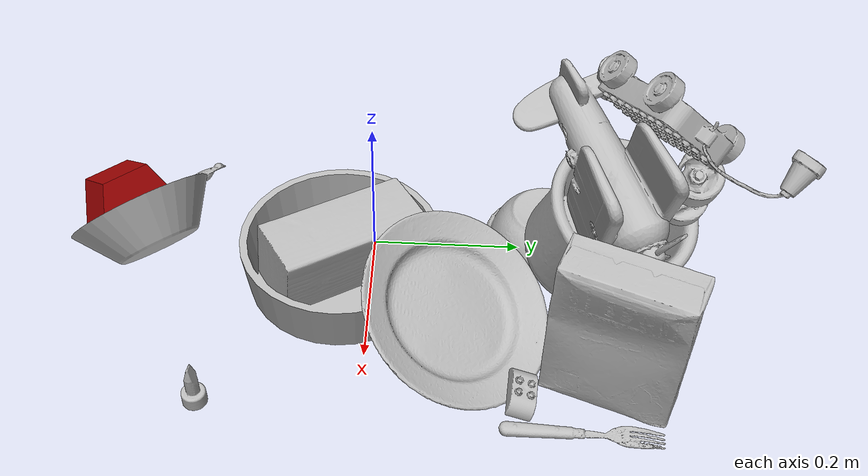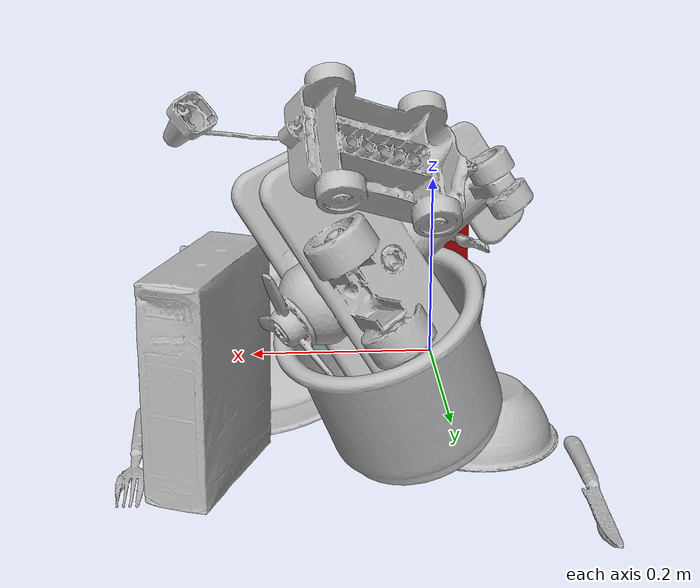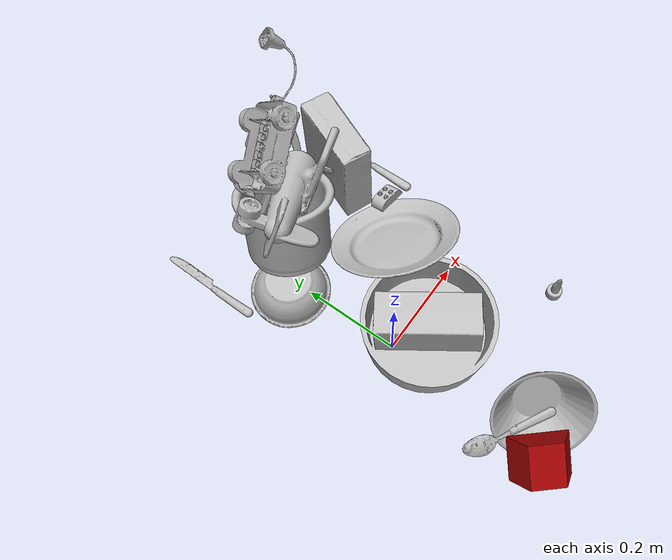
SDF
<sdf version="1.4">
  <world name="default">
    <light name="light1" type="point">
      <pose>0 0 1 0 0 0</pose>
      <diffuse>3 3 3 1</diffuse>
      <specular>3 3 3 1</specular>
    </light>
    <light name="light2" type="point">
      <pose>0 0.5 2 0 0 0</pose>
      <diffuse>1 1 1 1</diffuse>
      <specular>1 1 1 1</specular>
    </light>
    <light name="light3" type="point">
      <pose>0 0.5 2 0 0 0</pose>
      <diffuse>3 3 3 1</diffuse>
      <specular>3 3 3 1</specular>
    </light>
    <scene>
      <ambient>0.7 0.7 0.7</ambient>
    </scene>
    <model name="plate1">
      <link name="link_plate1">
        <collision name="default">
          <geometry>
            <mesh>
              <uri>model://plate/collision_meshes/collision.obj</uri>
              <scale>1.0 1.0 1.0</scale>
            </mesh>
          </geometry>
          <surface>
            <friction>
              <ode>
                <mu>0.5</mu>
                <mu2>0.5</mu2>
              </ode>
            </friction>
          <contact>
        <ode>
            <max_vel>0</max_vel>
            <min_depth>0.0001</min_depth>
            <kp>1e8</kp>
        </ode>
    </contact></surface>
        </collision>
        <visual name="default">
          <geometry>
            <mesh>
              <uri>model://plate/visual_meshes/visual.dae</uri>
              <scale>1.0 1.0 1.0</scale>
            </mesh>
          </geometry>
        </visual>
        <inertial>
          <mass>0.18013060092926025</mass>
          <pose>-0.0006044624606147408 0.0002782579977065325 -0.0010561981471255422 0.0022187543261248163 -0.003225499970721242 0.452618951787785</pose>
          <inertia>
            <ixx>0.00084265455</ixx>
            <iyy>0.000834595</iyy>
            <izz>0.0016481068</izz>
            <ixy>0</ixy>
            <ixz>0</ixz>
            <iyz>0</iyz>
          </inertia>
        </inertial>
      </link>
      <pose>0.171054869890213 0.11269358545541763 0.06024191156029701 0.3083858660923975 -0.4475394788489328 -2.770292485266795</pose>
    </model>
    <model name="plate2">
      <link name="link_plate2">
        <collision name="default">
          <geometry>
            <mesh>
              <uri>model://pan_tefal/collision_meshes/collision.obj</uri>
              <scale>1.0 1.0 1.0</scale>
            </mesh>
          </geometry>
          <surface>
            <friction>
              <ode>
                <mu>0.5</mu>
                <mu2>0.5</mu2>
              </ode>
            </friction>
          <contact>
        <ode>
            <max_vel>0</max_vel>
            <min_depth>0.0001</min_depth>
            <kp>1e8</kp>
        </ode>
    </contact></surface>
        </collision>
        <visual name="default">
          <geometry>
            <mesh>
              <uri>model://pan_tefal/visual_meshes/visual.dae</uri>
              <scale>1.0 1.0 1.0</scale>
            </mesh>
          </geometry>
        </visual>
        <inertial>
          <mass>1.1554980278015137</mass>
          <pose>-0.00018001958960667253 3.279018710600212e-05 -0.008514934219419956 0.0008190268412404128 -0.0003301434555644904 -0.33185316474518306</pose>
          <inertia>
            <ixx>0.007976347</ixx>
            <iyy>0.008027771</iyy>
            <izz>0.014682918</izz>
            <ixy>0</ixy>
            <ixz>0</ixz>
            <iyz>0</iyz>
          </inertia>
        </inertial>
      </link>
      <pose>0.06614404171705246 -0.03912733495235443 0.03804999589920044 9.208015377109658e-08 -2.0791487226705965e-07 2.3200548048942795</pose>
    </model>
    <model name="bowl1">
      <link name="link_bowl1">
        <collision name="default">
          <geometry>
            <mesh>
              <uri>model://bowl/collision_meshes/collision.obj</uri>
              <scale>1.0 1.0 1.0</scale>
            </mesh>
          </geometry>
          <surface>
            <friction>
              <ode>
                <mu>0.5</mu>
                <mu2>0.5</mu2>
              </ode>
            </friction>
          <contact>
        <ode>
            <max_vel>0</max_vel>
            <min_depth>0.0001</min_depth>
            <kp>1e8</kp>
        </ode>
    </contact></surface>
        </collision>
        <visual name="default">
          <geometry>
            <mesh>
              <uri>model://bowl/visual_meshes/visual.dae</uri>
              <scale>1.0 1.0 1.0</scale>
            </mesh>
          </geometry>
        </visual>
        <inertial>
          <mass>0.08154366910457611</mass>
          <pose>0.0002044497523456812 -0.0010302083101123571 -0.0008042664267122746 -0.01576409235239578 0.014546819263349199 0.7140418673414882</pose>
          <inertia>
            <ixx>0.00018731231</ixx>
            <iyy>0.000183127</iyy>
            <izz>0.00031512365</izz>
            <ixy>0</ixy>
            <ixz>0</ixz>
            <iyz>0</iyz>
          </inertia>
        </inertial>
      </link>
      <pose>-0.02005801536142826 0.23560333251953125 0.027247652411460876 -3.132435629830586 0.0007350510972769709 1.8892513334298613</pose>
    </model>
    <model name="bowl2">
      <link name="link_bowl2">
        <collision name="default">
          <geometry>
            <mesh>
              <uri>model://bowl_a/collision_meshes/collision.obj</uri>
              <scale>1.0 1.0 1.0</scale>
            </mesh>
          </geometry>
          <surface>
            <friction>
              <ode>
                <mu>0.5</mu>
                <mu2>0.5</mu2>
              </ode>
            </friction>
          <contact>
        <ode>
            <max_vel>0</max_vel>
            <min_depth>0.0001</min_depth>
            <kp>1e8</kp>
        </ode>
    </contact></surface>
        </collision>
        <visual name="default">
          <geometry>
            <mesh>
              <uri>model://bowl_a/visual_meshes/visual.dae</uri>
              <scale>1.0 1.0 1.0</scale>
            </mesh>
          </geometry>
        </visual>
        <inertial>
          <mass>0.4363987147808075</mass>
          <pose>0.0002786752884276211 4.73113359475974e-05 -0.0013765294570475817 -0.0009805318297205425 -0.0010938254473046036 -0.19123908587825994</pose>
          <inertia>
            <ixx>0.0012424473</ixx>
            <iyy>0.001250075</iyy>
            <izz>0.0022097398</izz>
            <ixy>0</ixy>
            <ixz>0</ixz>
            <iyz>0</iyz>
          </inertia>
        </inertial>
      </link>
      <pose>0.047755226492881775 -0.29714787006378174 0.06281913816928864 0.5267914171525007 -0.7454276970651061 -0.038958163814266845</pose>
    </model>
    <model name="silverware1">
      <link name="link_silverware1">
        <collision name="default">
          <geometry>
            <mesh>
              <uri>model://spoon/collision_meshes/collision.obj</uri>
              <scale>1.0 1.0 1.0</scale>
            </mesh>
          </geometry>
          <surface>
            <friction>
              <ode>
                <mu>0.5</mu>
                <mu2>0.5</mu2>
              </ode>
            </friction>
          <contact>
        <ode>
            <max_vel>0</max_vel>
            <min_depth>0.0001</min_depth>
            <kp>1e8</kp>
        </ode>
    </contact></surface>
        </collision>
        <visual name="default">
          <geometry>
            <mesh>
              <uri>model://spoon/visual_meshes/visual.dae</uri>
              <scale>1.0 1.0 1.0</scale>
            </mesh>
          </geometry>
        </visual>
        <inertial>
          <mass>0.034700214862823486</mass>
          <pose>-0.00552632100880146 -0.0016034168656915426 -0.0007271654903888702 0.03521477925438783 -0.03906582568380071 0.006150611591128785</pose>
          <inertia>
            <ixx>1.9300821e-06</ixx>
            <iyy>0.00013203312</iyy>
            <izz>0.00013298499</izz>
            <ixy>0</ixy>
            <ixz>0</ixz>
            <iyz>0</iyz>
          </inertia>
        </inertial>
      </link>
      <pose>-0.01633395254611969 -0.27647650241851807 0.04308179393410683 2.4893410380920082 -0.14852648376411656 2.660949210521651</pose>
    </model>
    <model name="box1">
      <link name="link_box1">
        <collision name="default">
          <geometry>
            <mesh>
              <uri>model://cracker_box/collision_meshes/collision.obj</uri>
              <scale>1.0 1.0 1.0</scale>
            </mesh>
          </geometry>
          <surface>
            <friction>
              <ode>
                <mu>0.5</mu>
                <mu2>0.5</mu2>
              </ode>
            </friction>
          <contact>
        <ode>
            <max_vel>0</max_vel>
            <min_depth>0.0001</min_depth>
            <kp>1e8</kp>
        </ode>
    </contact></surface>
        </collision>
        <visual name="default">
          <geometry>
            <mesh>
              <uri>model://cracker_box/visual_meshes/visual.dae</uri>
              <scale>1.0 1.0 1.0</scale>
            </mesh>
          </geometry>
        </visual>
        <inertial>
          <mass>1.831273078918457</mass>
          <pose>0.000946414191275835 0.00025434247800149024 -0.0017029533628374338 -0.0003162074786093215 -0.01110648680647863 0.0025467950006863548</pose>
          <inertia>
            <ixx>0.0046579414</ixx>
            <iyy>0.0076911766</iyy>
            <izz>0.010976015</izz>
            <ixy>0</ixy>
            <ixz>0</ixz>
            <iyz>0</iyz>
          </inertia>
        </inertial>
      </link>
      <pose>0.24016495048999786 0.3029552698135376 0.10738718509674072 3.053916200693418 1.565821155625814 2.6755605148663677</pose>
    </model>
    <model name="box2">
      <link name="link_box2">
        <collision name="default">
          <geometry>
            <mesh>
              <uri>model://wood_block/collision_meshes/collision.obj</uri>
              <scale>1.0 1.0 1.0</scale>
            </mesh>
          </geometry>
          <surface>
            <friction>
              <ode>
                <mu>0.5</mu>
                <mu2>0.5</mu2>
              </ode>
            </friction>
          <contact>
        <ode>
            <max_vel>0</max_vel>
            <min_depth>0.0001</min_depth>
            <kp>1e8</kp>
        </ode>
    </contact></surface>
        </collision>
        <visual name="default">
          <geometry>
            <mesh>
              <uri>model://wood_block/visual_meshes/visual.dae</uri>
              <scale>1.0 1.0 1.0</scale>
            </mesh>
          </geometry>
        </visual>
        <inertial>
          <mass>1.0038666725158691</mass>
          <pose>-5.813315510749817e-06 -0.000570809468626976 0.0002640858292579651 -0.05221020962952386 -0.005192696059900718 -0.006861377701075274</pose>
          <inertia>
            <ixx>0.0013433257</ixx>
            <iyy>0.0042435657</iyy>
            <izz>0.0042276927</izz>
            <ixy>0</ixy>
            <ixz>0</ixz>
            <iyz>0</iyz>
          </inertia>
        </inertial>
      </link>
      <pose>0.06529160588979721 -0.03670964762568474 0.06037759408354759 0.06160824138268423 0.060938803510955375 2.1579967474299444</pose>
    </model>
    <model name="cup1">
      <link name="link_cup1">
        <collision name="default">
          <geometry>
            <mesh>
              <uri>model://i_cups/collision_meshes/collision.obj</uri>
              <scale>2.0 2.0 2.0</scale>
            </mesh>
          </geometry>
          <surface>
            <friction>
              <ode>
                <mu>0.5</mu>
                <mu2>0.5</mu2>
              </ode>
            </friction>
          <contact>
        <ode>
            <max_vel>0</max_vel>
            <min_depth>0.0001</min_depth>
            <kp>1e8</kp>
        </ode>
    </contact></surface>
        </collision>
        <visual name="default">
          <geometry>
            <mesh>
              <uri>model://i_cups/visual_meshes/visual.dae</uri>
              <scale>2.0 2.0 2.0</scale>
            </mesh>
          </geometry>
        </visual>
        <inertial>
          <mass>0.6038269996643066</mass>
          <pose>0.00022479970357380807 0.0003359453985467553 -0.001715799910016358 -0.02898255198870416 -0.03987340808103542 -0.3459203892901821</pose>
          <inertia>
            <ixx>0.0033440301</ixx>
            <iyy>0.003373493</iyy>
            <izz>0.0037374943</izz>
            <ixy>0</ixy>
            <ixz>0</ixz>
            <iyz>0</iyz>
          </inertia>
        </inertial>
      </link>
      <pose>0.0621524415910244 0.2979312241077423 0.09905537962913513 0.44223869954910255 0.03915937583022066 2.193201766799153</pose>
    </model>
    <model name="silverware2">
      <link name="link_silverware2">
        <collision name="default">
          <geometry>
            <mesh>
              <uri>model://knife/collision_meshes/collision.obj</uri>
              <scale>1.0 1.0 1.0</scale>
            </mesh>
          </geometry>
          <surface>
            <friction>
              <ode>
                <mu>0.5</mu>
                <mu2>0.5</mu2>
              </ode>
            </friction>
          <contact>
        <ode>
            <max_vel>0</max_vel>
            <min_depth>0.0001</min_depth>
            <kp>1e8</kp>
        </ode>
    </contact></surface>
        </collision>
        <visual name="default">
          <geometry>
            <mesh>
              <uri>model://knife/visual_meshes/visual.dae</uri>
              <scale>1.0 1.0 1.0</scale>
            </mesh>
          </geometry>
        </visual>
        <inertial>
          <mass>0.01351180113852024</mass>
          <pose>-0.023785246536135674 0.0015275131445378065 5.062015407020226e-05 0.073058244240525 0.017248418380522417 -0.007409818685807072</pose>
          <inertia>
            <ixx>3.8351965e-07</ixx>
            <iyy>5.1910156e-05</iyy>
            <izz>5.2033673e-05</izz>
            <ixy>0</ixy>
            <ixz>0</ixz>
            <iyz>0</iyz>
          </inertia>
        </inertial>
      </link>
      <pose>-0.10662949830293655 0.371101051568985 0.008136807940900326 -0.2817368235702867 -0.008871928467039072 1.5577807256932588</pose>
    </model>
    <model name="silverware3">
      <link name="link_silverware3">
        <collision name="default">
          <geometry>
            <mesh>
              <uri>model://fork/collision_meshes/collision.obj</uri>
              <scale>1.0 1.0 1.0</scale>
            </mesh>
          </geometry>
          <surface>
            <friction>
              <ode>
                <mu>0.5</mu>
                <mu2>0.5</mu2>
              </ode>
            </friction>
          <contact>
        <ode>
            <max_vel>0</max_vel>
            <min_depth>0.0001</min_depth>
            <kp>1e8</kp>
        </ode>
    </contact></surface>
        </collision>
        <visual name="default">
          <geometry>
            <mesh>
              <uri>model://fork/visual_meshes/visual.dae</uri>
              <scale>1.0 1.0 1.0</scale>
            </mesh>
          </geometry>
        </visual>
        <inertial>
          <mass>0.030749449506402016</mass>
          <pose>-0.029570044949650764 0.0004658822435885668 0.00032188615296036005 -0.013551266353778695 -0.010977839115777554 0.014453902178384312</pose>
          <inertia>
            <ixx>1.0779423e-06</ixx>
            <iyy>8.0277954e-05</iyy>
            <izz>8.076011e-05</izz>
            <ixy>0</ixy>
            <ixz>0</ixz>
            <iyz>0</iyz>
          </inertia>
        </inertial>
      </link>
      <pose>0.30929747223854065 0.2673179805278778 0.007446621544659138 -3.0634941104718383 0.0028358719269165216 1.5528706160613335</pose>
    </model>
    <model name="toy1">
      <link name="link_toy1">
        <collision name="default">
          <geometry>
            <mesh>
              <uri>model://e_toy_airplane/collision_meshes/collision.obj</uri>
              <scale>1.0 1.0 1.0</scale>
            </mesh>
          </geometry>
          <surface>
            <friction>
              <ode>
                <mu>0.5</mu>
                <mu2>0.5</mu2>
              </ode>
            </friction>
          <contact>
        <ode>
            <max_vel>0</max_vel>
            <min_depth>0.0001</min_depth>
            <kp>1e8</kp>
        </ode>
    </contact></surface>
        </collision>
        <visual name="default">
          <geometry>
            <mesh>
              <uri>model://e_toy_airplane/visual_meshes/visual.dae</uri>
              <scale>1.0 1.0 1.0</scale>
            </mesh>
          </geometry>
        </visual>
        <inertial>
          <mass>0.01770107075572014</mass>
          <pose>0.00011740486661437899 -2.248296732432209e-05 -0.011187206022441387 0.005518513464699853 0.009228302242376646 0.15041570361631973</pose>
          <inertia>
            <ixx>5.4025695e-06</ixx>
            <iyy>5.3473045e-06</iyy>
            <izz>1.6236847e-06</izz>
            <ixy>0</ixy>
            <ixz>0</ixz>
            <iyz>0</iyz>
          </inertia>
        </inertial>
      </link>
      <pose>0.28162068128585815 -0.20024588704109192 0.03321196511387825 4.2011645086703376e-05 -0.0001396529766758773 1.3011511753061968</pose>
    </model>
    <model name="toy2">
      <link name="link_toy2">
        <collision name="default">
          <geometry>
            <mesh>
              <uri>model://a_toy_airplane/collision_meshes/collision.obj</uri>
              <scale>1.0 1.0 1.0</scale>
            </mesh>
          </geometry>
          <surface>
            <friction>
              <ode>
                <mu>0.5</mu>
                <mu2>0.5</mu2>
              </ode>
            </friction>
          <contact>
        <ode>
            <max_vel>0</max_vel>
            <min_depth>0.0001</min_depth>
            <kp>1e8</kp>
        </ode>
    </contact></surface>
        </collision>
        <visual name="default">
          <geometry>
            <mesh>
              <uri>model://a_toy_airplane/visual_meshes/visual.dae</uri>
              <scale>1.0 1.0 1.0</scale>
            </mesh>
          </geometry>
        </visual>
        <inertial>
          <mass>1.6391528844833374</mass>
          <pose>0.02516508661210537 -0.003707319963723421 -0.0011962438002228737 -0.012016999892079352 -0.14663507149587088 0.004149061575203148</pose>
          <inertia>
            <ixx>0.0059525487</ixx>
            <iyy>0.008674072</iyy>
            <izz>0.01015627</izz>
            <ixy>0</ixy>
            <ixz>0</ixz>
            <iyz>0</iyz>
          </inertia>
        </inertial>
      </link>
      <pose>0.07052743434906006 0.2876552641391754 0.21925240755081177 1.956271764664017 0.41249349568626975 0.6902065818813701</pose>
    </model>
    <model name="toy3">
      <link name="link_toy3">
        <collision name="default">
          <geometry>
            <mesh>
              <uri>model://g_lego_duplo/collision_meshes/collision.obj</uri>
              <scale>1.0 1.0 1.0</scale>
            </mesh>
          </geometry>
          <surface>
            <friction>
              <ode>
                <mu>0.5</mu>
                <mu2>0.5</mu2>
              </ode>
            </friction>
          <contact>
        <ode>
            <max_vel>0</max_vel>
            <min_depth>0.0001</min_depth>
            <kp>1e8</kp>
        </ode>
    </contact></surface>
        </collision>
        <visual name="default">
          <geometry>
            <mesh>
              <uri>model://g_lego_duplo/visual_meshes/visual.dae</uri>
              <scale>1.0 1.0 1.0</scale>
            </mesh>
          </geometry>
        </visual>
        <inertial>
          <mass>0.5092288255691528</mass>
          <pose>-0.05004768446087837 0.0017554641235619783 0.0038806775119155645 0.010963010010498962 0.03810823590924119 -0.09653024292159736</pose>
          <inertia>
            <ixx>0.00073787844</ixx>
            <iyy>0.002230844</iyy>
            <izz>0.002790868</izz>
            <ixy>0</ixy>
            <ixz>0</ixz>
            <iyz>0</iyz>
          </inertia>
        </inertial>
      </link>
      <pose>0.1374889612197876 0.3630969524383545 0.33159777522087097 2.346196451147222 -0.34602734091930987 0.4025418393661921</pose>
    </model>
    <model name="toy4">
      <link name="link_toy4">
        <collision name="default">
          <geometry>
            <mesh>
              <uri>model://a_lego_duplo/collision_meshes/collision.obj</uri>
              <scale>1.0 1.0 1.0</scale>
            </mesh>
          </geometry>
          <surface>
            <friction>
              <ode>
                <mu>0.5</mu>
                <mu2>0.5</mu2>
              </ode>
            </friction>
          <contact>
        <ode>
            <max_vel>0</max_vel>
            <min_depth>0.0001</min_depth>
            <kp>1e8</kp>
        </ode>
    </contact></surface>
        </collision>
        <visual name="default">
          <geometry>
            <mesh>
              <uri>model://a_lego_duplo/visual_meshes/visual.dae</uri>
              <scale>1.0 1.0 1.0</scale>
            </mesh>
          </geometry>
        </visual>
        <inertial>
          <mass>0.03161923587322235</mass>
          <pose>-0.00011337598698446527 0.00018517524586059153 0.00036926084430888295 -0.014116977368405541 -0.00012565500284871778 6.143069663272407e-05</pose>
          <inertia>
            <ixx>4.0538393e-06</ixx>
            <iyy>9.081488e-06</iyy>
            <izz>1.1249442e-05</izz>
            <ixy>0</ixy>
            <ixz>0</ixz>
            <iyz>0</iyz>
          </inertia>
        </inertial>
      </link>
      <pose>0.2601509094238281 0.19758370518684387 0.01893254928290844 -0.29717316122966586 0.09543545552111767 -0.08888087097800448</pose>
    </model>
    <model name="toy5">
      <link name="link_toy5">
        <collision name="default">
          <geometry>
            <mesh>
              <uri>model://prism/collision_meshes/collision.obj</uri>
              <scale>1.0 1.0 1.0</scale>
            </mesh>
          </geometry>
          <surface>
            <friction>
              <ode>
                <mu>0.5</mu>
                <mu2>0.5</mu2>
              </ode>
            </friction>
          <contact>
        <ode>
            <max_vel>0</max_vel>
            <min_depth>0.0001</min_depth>
            <kp>1e8</kp>
        </ode>
    </contact></surface>
        </collision>
        <visual name="default">
          <geometry>
            <mesh>
              <uri>model://prism/visual_meshes/visual.dae</uri>
              <scale>1.0 1.0 1.0</scale>
            </mesh>
          </geometry>
        </visual>
        <inertial>
          <mass>0.5650969743728638</mass>
          <pose>-9.85359656624496e-05 -4.96157269935793e-07 -0.0033869100734591484 0.0 0.006559179369129768 0.0</pose>
          <inertia>
            <ixx>0.00050999306</ixx>
            <iyy>0.00061633316</iyy>
            <izz>0.00075493456</izz>
            <ixy>0</ixy>
            <ixz>0</ixz>
            <iyz>0</iyz>
          </inertia>
        </inertial>
      </link>
      <pose>-0.030683962628245354 -0.3538672626018524 0.04887811467051506 -0.5243831055318056 2.0303936719133443e-06 2.296165023276297</pose>
    </model>
  <physics type="ode">
      <max_contacts>50</max_contacts>
      <ode>
        <solver>
          <type>quick</type>
          <iters>75</iters>
        </solver>
        <constraints>
          <contact_max_correcting_vel>0</contact_max_correcting_vel>
          <contact_surface_layer>0</contact_surface_layer>
        </constraints>
      </ode>
    </physics></world>
</sdf>
